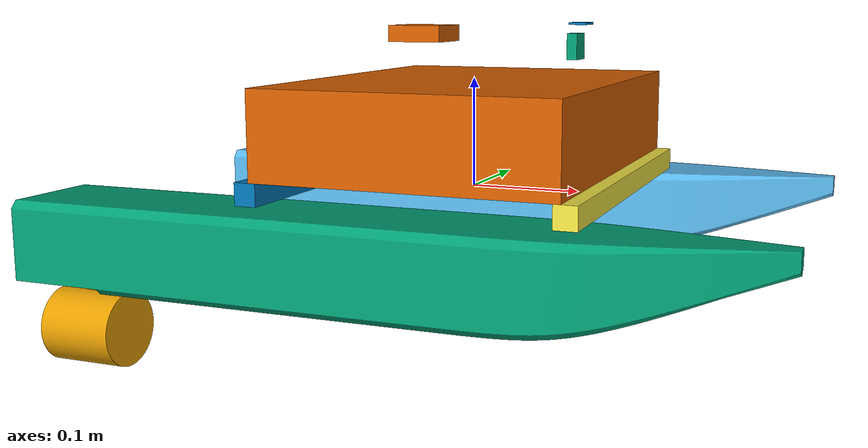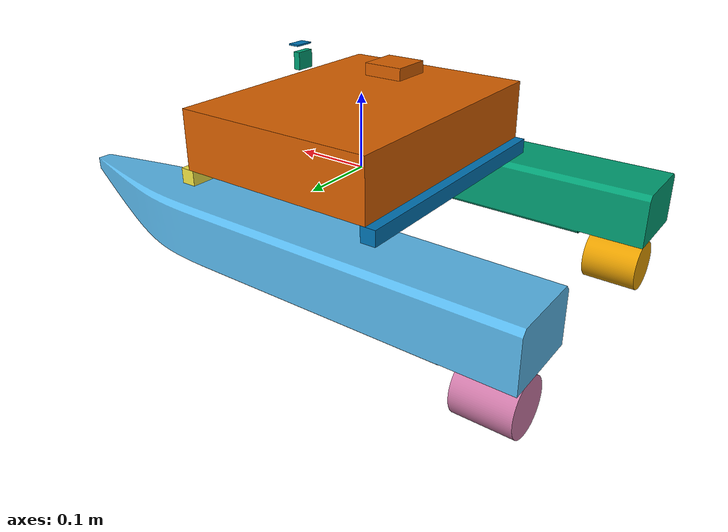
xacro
<?xml version="1.0"?>
<robot xmlns:xacro="http://www.ros.org/wiki/xacro" name="asv">

  <!-- WAJIB: VRX xacro_cmd() selalu melempar 4 argumen ini.
       Kalau salah satu tidak dideklarasikan -> "undefined local" -> spawn gagal. -->
  <xacro:arg name="namespace"           default="asv"/>
  <xacro:arg name="locked"              default="false"/>
  <xacro:arg name="vrx_sensors_enabled" default="true"/>
  <xacro:arg name="thruster_config"     default="H"/>

  <xacro:property name="box_shell_mass" value="0.519"/>
  <!-- Isi kotak: baterai, komputer, ESC, kabel. UBAH SESUAI TIMBANGAN. -->
  <xacro:property name="payload_mass"   value="1.0"/>

  <xacro:property name="enable_thrusters" value="true"/>
  <xacro:property name="thruster_velocity_control" value="false"/>

  <xacro:property name="mesh_pkg" value="package://asv_description/meshes"/>
  <xacro:property name="mm"       value="0.001 0.001 0.001"/>

  <!-- Geometri terukur dari STL (mm -> m) -->
  <xacro:property name="hull_len"   value="0.650"/>
  <xacro:property name="hull_wid"   value="0.100"/>
  <xacro:property name="hull_hgt"   value="0.080"/>
  <xacro:property name="hull_rad_model" value="0.064"/>
  <xacro:property name="hull_y"     value="0.175"/>   <!-- setengah jarak lambung -->
  <xacro:property name="hull_x0"    value="-0.340425"/>
  <xacro:property name="hull_z0"    value="-0.080"/>

  <!-- =========================== BASE =========================== -->
  <!-- base_link = badan kaku utama. Semua fixed joint akan dilebur
       ke sini saat URDF dikonversi ke SDF, jadi plugin VRX menunjuk ke sini. -->
  <link name="base_link">
    <inertial>
      <origin xyz="0 0 0" rpy="0 0 0"/>
      <mass value="0.001"/>
      <inertia ixx="1e-6" ixy="0" ixz="0" iyy="1e-6" iyz="0" izz="1e-6"/>
    </inertial>
  </link>

  <!-- ====================== MAKRO LAMBUNG ======================= -->
  <xacro:macro name="hull" params="side reflect">
    <link name="hull_${side}">
      <inertial>
        <origin xyz="0.284273 0 0.043859" rpy="0 0 0"/>
        <!-- PLA 1240: massa & inersia ACDC4Robot (densitas 1000) x 1.24 -->
        <mass value="0.739554"/>
        <inertia ixx="0.00158466" ixy="2.7322e-08" ixz="-0.00035137"
                 iyy="0.02416650" iyz="-2.0402e-09" izz="0.02446096"/>
      </inertial>
      <visual>
        <origin xyz="0 0 0" rpy="0 0 0"/>
        <geometry>
          <mesh filename="${mesh_pkg}/Body-Kapal-URDF-v4.stl" scale="${mm}"/>
        </geometry>
      </visual>
      <!-- PRIMITIF, bukan mesh: dartsim tidak bisa membangun collision dari mesh -->
      <collision>
        <origin xyz="${hull_len/2} 0 ${hull_hgt/2}" rpy="0 0 0"/>
        <geometry><box size="${hull_len} ${hull_wid} ${hull_hgt}"/></geometry>
      </collision>
    </link>
    <joint name="base_to_hull_${side}" type="fixed">
      <parent link="base_link"/>
      <child  link="hull_${side}"/>
      <origin xyz="${hull_x0} ${reflect*hull_y} ${hull_z0}" rpy="0 0 0"/>
    </joint>
  </xacro:macro>

  <xacro:hull side="left"  reflect="1"/>
  <xacro:hull side="right" reflect="-1"/>

  <!-- ==================== MAKRO BALOK SILANG ==================== -->
  <!-- Aluminium 2700 kg/m^3 (Fusion memberi baja): 1.099 -> 0.378 kg -->
  <xacro:macro name="crossbeam" params="name x">
    <link name="${name}">
      <inertial>
        <origin xyz="0 ${hull_y} 0" rpy="0 0 0"/>
        <mass value="0.378"/>
        <inertia ixx="0.0038713" ixy="0" ixz="0"
                 iyy="0.0000252" iyz="0" izz="0.0038713"/>
      </inertial>
      <visual>
        <origin xyz="0 0 0" rpy="0 0 0"/>
        <geometry>
          <mesh filename="${mesh_pkg}/Urdf-Alprof-v2.stl" scale="${mm}"/>
        </geometry>
      </visual>
      <collision>
        <origin xyz="0 ${hull_y} 0" rpy="0 0 0"/>
        <geometry><box size="0.02 0.35 0.02"/></geometry>
      </collision>
    </link>
    <joint name="base_to_${name}" type="fixed">
      <parent link="base_link"/>
      <child  link="${name}"/>
      <origin xyz="${x} -${hull_y} 0.01" rpy="0 0 0"/>
    </joint>
  </xacro:macro>

  <xacro:crossbeam name="beam_fore" x="0.138575"/>
  <xacro:crossbeam name="beam_aft"  x="-0.138575"/>

  <!-- ==================== KOTAK ELEKTRONIK ====================== -->
  <!-- Fusion: 58.6 kg (baja pejal!). Diset 3.0 kg = enclosure kosong + isi.
       GANTI dengan massa timbangan asli kalau sudah ada. -->
  <link name="box_electronics">
    <inertial>
      <origin xyz="0 0 0.0395" rpy="0 0 0"/>
      <!-- cangkang PP berongga (6 pelat, teorema sumbu sejajar)
           + muatan dimodelkan sebagai balok padat mengisi rongga -->
      <mass value="${box_shell_mass + payload_mass}"/>
      <inertia ixx="${0.007505 + payload_mass*0.01072842}" ixy="0" ixz="0"
               iyy="${0.004997 + payload_mass*0.00659508}" iyz="0"
               izz="${0.011250 + payload_mass*0.01628333}"/>
    </inertial>
    <visual>
      <origin xyz="0 0 0" rpy="0 0 0"/>
      <geometry>
        <mesh filename="${mesh_pkg}/Kotak-Urdf-v3.stl" scale="${mm}"/>
      </geometry>
    </visual>
    <collision>
      <origin xyz="0 0 0.0395" rpy="0 0 0"/>
      <geometry><box size="0.27 0.35 0.079"/></geometry>
    </collision>
  </link>
  <joint name="base_to_box" type="fixed">
    <parent link="base_link"/>
    <child  link="box_electronics"/>
    <origin xyz="0 0 0.02" rpy="0 0 0"/>
  </joint>

  <!-- ======================== THRUSTER ========================== -->
  <xacro:macro name="thruster" params="side reflect">
    <link name="thruster_${side}">
      <inertial>
        <origin xyz="0 0.035 0.000141" rpy="0 0 0"/>
        <mass value="0.152"/>
        <inertia ixx="1.233e-4" ixy="0" ixz="0"
                 iyy="1.040e-4" iyz="0" izz="1.233e-4"/>
      </inertial>
      <visual>
        <origin xyz="0 0 0" rpy="0 0 0"/>
        <geometry>
          <mesh filename="${mesh_pkg}/Thruster-URDF-v1.stl" scale="${mm}"/>
        </geometry>
      </visual>
      <!-- Dimensi disesuaikan ke unit asli: r 0,034 -> 0,037, L 0,070 -> 0,075.
           rpy 1.5708 di sumbu X memutar sumbu silinder dari Z ke -Y, searah
           dengan sumbu dorong. -->
      <collision>
        <origin xyz="0 0.035 0" rpy="1.5708 0 0"/>
        <geometry><cylinder radius="0.037" length="0.075"/></geometry>
      </collision>
    </link>
    <joint name="base_to_thruster_${side}" type="fixed">
      <parent link="base_link"/>
      <child  link="thruster_${side}"/>
      <origin xyz="-0.261425 ${reflect*hull_y} -0.119100" rpy="0 0 1.5708"/>
    </joint>

    <!-- Propeller dummy. Hanya dibuat kalau enable_thrusters true. -->
    <xacro:if value="${enable_thrusters}">
    <link name="prop_${side}">
      <inertial>
        <origin xyz="0 0 0" rpy="0 0 0"/>
        <mass value="0.010"/>
        <inertia ixx="2.25e-6" ixy="0" ixz="0"
                 iyy="4.5e-6"  iyz="0" izz="2.25e-6"/>
      </inertial>
    </link>
    <joint name="prop_joint_${side}" type="continuous">
      <parent link="thruster_${side}"/>
      <child  link="prop_${side}"/>
      <origin xyz="0 0.070 0" rpy="0 0 0"/>
      <axis xyz="0 -1 0"/>
    </joint>
    </xacro:if>
  </xacro:macro>

  <xacro:thruster side="left"  reflect="1"/>
  <xacro:thruster side="right" reflect="-1"/>

<!-- ======================== SENSOR ============================= -->

  <xacro:property name="cam_x" value="0.10"/>
  <xacro:property name="cam_y" value="0.00"/>
  <xacro:property name="cam_z" value="0.13"/>

  <link name="camera_link">
    <visual>
      <origin xyz="-0.0045 0 0" rpy="0 0 0"/>
      <geometry><box size="0.009 0.025 0.023"/></geometry>
    </visual>
    <inertial>
      <origin xyz="-0.0045 0 0" rpy="0 0 0"/>
      <mass value="0.003"/>
      <inertia ixx="2.885e-7" ixy="0" ixz="0"
               iyy="1.525e-7" iyz="0" izz="1.765e-7"/>
    </inertial>
  </link>

  <joint name="base_to_camera" type="fixed">
    <parent link="base_link"/>
    <child  link="camera_link"/>
    <origin xyz="${cam_x} ${cam_y} ${cam_z}" rpy="0 0 0"/>
  </joint>

  <joint name="camera_to_optical" type="fixed">
    <parent link="camera_link"/>
    <child  link="camera_link_optical"/>
    <origin xyz="0 0 0" rpy="${-pi/2} 0 ${-pi/2}"/>
  </joint>
  <link name="camera_link_optical"/>

  <gazebo reference="camera_link">
    <sensor name="front_camera" type="camera">
      <always_on>1</always_on>
      <update_rate>30.0</update_rate>
      <visualize>false</visualize>
      <gz_frame_id>wamv/camera_link</gz_frame_id>
      <camera name="front_camera">
        <horizontal_fov>1.309</horizontal_fov>
        <image>
          <width>640</width>
          <height>480</height>
          <format>R8G8B8</format>
        </image>
        <!-- far dinaikkan dari 50 ke 400: di perairan terbuka garis pantai
             adalah satu-satunya sumber fitur, dan jaraknya puluhan meter. -->
        <clip><near>0.02</near><far>400.0</far></clip>
        <noise>
          <type>gaussian</type>
          <mean>0.0</mean>
          <stddev>0.005</stddev>
        </noise>
      </camera>
    </sensor>
  </gazebo>

<!-- IMU. Sendi sengaja revolute dengan limit nol, BUKAN fixed - pola ini
disalin dari wamv_imu.xacro. Nilai derau diambil apa adanya dari
sana; ganti kalau sudah punya spesifikasi IMU fisik lu. -->
  <link name="imu_link">
    <visual>
      <geometry><box size="0.0154 0.0255 0.002"/></geometry>
    </visual>
    <inertial>
      <mass value="0.00272"/>
      <inertia ixx="1.483e-7" ixy="0" ixz="0"
               iyy="5.466e-8" iyz="0" izz="2.012e-7"/>
    </inertial>
  </link>

  <joint name="base_to_imu" type="fixed">
    <parent link="base_link"/>
    <child  link="imu_link"/>
    <origin xyz="${cam_x} ${cam_y} 0.15" rpy="0 0 0"/>
  </joint>

  <gazebo reference="imu_link">
    <sensor name="imu_sensor" type="imu">
      <always_on>true</always_on>
      <update_rate>200</update_rate>
      <frame_id>wamv/imu_link</frame_id>
      <gz_frame_id>wamv/imu_link</gz_frame_id>
      <imu>
        <angular_velocity>
          <x><noise type="gaussian"><mean>0.0</mean><stddev>2e-4</stddev></noise></x>
          <y><noise type="gaussian"><mean>0.0</mean><stddev>2e-4</stddev></noise></y>
          <z><noise type="gaussian"><mean>0.0</mean><stddev>2e-4</stddev></noise></z>
        </angular_velocity>
        <linear_acceleration>
          <x><noise type="gaussian"><mean>0.0</mean><stddev>1.7e-2</stddev></noise></x>
          <y><noise type="gaussian"><mean>0.0</mean><stddev>1.7e-2</stddev></noise></y>
          <z><noise type="gaussian"><mean>0.0</mean><stddev>1.7e-2</stddev></noise></z>
        </linear_acceleration>
        <orientation_reference_frame>
          <localization>ENU</localization>
        </orientation_reference_frame>
      </imu>
    </sensor>
  </gazebo>

  <link name="gps_link">
    <visual>
      <geometry><box size="0.05 0.05 0.015"/></geometry>
    </visual>
    <inertial>
      <mass value="0.030"/>
      <inertia ixx="6.81e-6" ixy="0" ixz="0"
               iyy="6.81e-6" iyz="0" izz="1.25e-5"/>
    </inertial>
  </link>

  <joint name="base_to_gps" type="fixed">
    <parent link="base_link"/>
    <child  link="gps_link"/>
    <origin xyz="-0.05 0 0.14" rpy="0 0 0"/>
  </joint>

  <gazebo reference="gps_link">
    <sensor name="navsat" type="navsat">
      <always_on>1</always_on>
      <update_rate>20.0</update_rate>
      <gz_frame_id>wamv/gps_link</gz_frame_id>
    </sensor>
  </gazebo>

  <!-- ===================== PLUGIN VRX =========================== -->
  <gazebo>
    <!-- Satu Surface per lambung (katamaran). Titik disebar depan-belakang
         supaya pitch ikut terselesaikan, bukan cuma heave. -->
    <plugin name="vrx::Surface" filename="libSurface.so">
      <link_name>base_link</link_name>
      <hull_length>${hull_len}</hull_length>
      <hull_radius>${hull_rad_model}</hull_radius>
      <fluid_level>0</fluid_level>
      <fluid_density>997.8</fluid_density>
      <points>
        <point>0.22  ${hull_y} ${hull_z0}</point>
        <point>-0.22 ${hull_y} ${hull_z0}</point>
      </points>
      <wavefield>
        <topic>/vrx/wavefield/parameters</topic>
      </wavefield>
    </plugin>

    <plugin name="vrx::Surface" filename="libSurface.so">
      <link_name>base_link</link_name>
      <hull_length>${hull_len}</hull_length>
      <hull_radius>${hull_rad_model}</hull_radius>
      <fluid_level>0</fluid_level>
      <fluid_density>997.8</fluid_density>
      <points>
        <point>0.22  -${hull_y} ${hull_z0}</point>
        <point>-0.22 -${hull_y} ${hull_z0}</point>
      </points>
      <wavefield>
        <topic>/vrx/wavefield/parameters</topic>
      </wavefield>
    </plugin>

    <plugin name="vrx::SimpleHydrodynamics" filename="libSimpleHydrodynamics.so">
      <link_name>base_link</link_name>
      <xDotU>0.2</xDotU>  <yDotV>1.5</yDotV>  <zDotW>1.5</zDotW>
      <kDotP>0.05</kDotP> <mDotQ>0.05</mDotQ> <nDotR>0.1</nDotR>
      <xU>2.0</xU>    <xUU>6.0</xUU>
      <yV>12.0</yV>   <yVV>30.0</yVV>
      <zW>30.0</zW>   <zWW>0.0</zWW>
      <kP>1.5</kP>    <kPP>2.0</kPP>
      <mQ>2.5</mQ>    <mQQ>3.0</mQQ>
      <nR>2.0</nR>    <nRR>3.0</nRR>
    </plugin>

    <plugin filename="libgz-sim-pose-publisher-system.so"
            name="gz::sim::systems::PosePublisher">
      <publish_link_pose>false</publish_link_pose>
      <publish_sensor_pose>true</publish_sensor_pose>
      <publish_collision_pose>false</publish_collision_pose>
      <publish_visual_pose>false</publish_visual_pose>
      <publish_nested_model_pose>true</publish_nested_model_pose>
      <publish_model_pose>true</publish_model_pose>
      <use_pose_vector_msg>true</use_pose_vector_msg>
      <update_frequency>50</update_frequency>
      <static_publisher>false</static_publisher>
    </plugin>

    <plugin filename="gz-sim-joint-state-publisher-system"
            name="gz::sim::systems::JointStatePublisher">
    </plugin>

    <xacro:if value="${enable_thrusters}">
    <plugin name="gz::sim::systems::Thruster" filename="gz-sim-thruster-system">
      <namespace>$(arg namespace)</namespace>
      <joint_name>prop_joint_left</joint_name>
      <thrust_coefficient>0.004</thrust_coefficient>
      <fluid_density>997.8</fluid_density>
      <propeller_diameter>0.060</propeller_diameter>
      <velocity_control>${thruster_velocity_control}</velocity_control>
      <max_thrust_cmd>25.0</max_thrust_cmd>
      <min_thrust_cmd>-18.0</min_thrust_cmd>
      <topic>thrusters/left/thrust</topic>
      <name>left</name>
    </plugin>

    <plugin name="gz::sim::systems::Thruster" filename="gz-sim-thruster-system">
      <namespace>$(arg namespace)</namespace>
      <joint_name>prop_joint_right</joint_name>
      <thrust_coefficient>0.004</thrust_coefficient>
      <fluid_density>997.8</fluid_density>
      <propeller_diameter>0.060</propeller_diameter>
      <velocity_control>${thruster_velocity_control}</velocity_control>
      <max_thrust_cmd>25.0</max_thrust_cmd>
      <min_thrust_cmd>-18.0</min_thrust_cmd>
      <topic>thrusters/right/thrust</topic>
      <name>right</name>
    </plugin>
    </xacro:if>
  </gazebo>

</robot>
